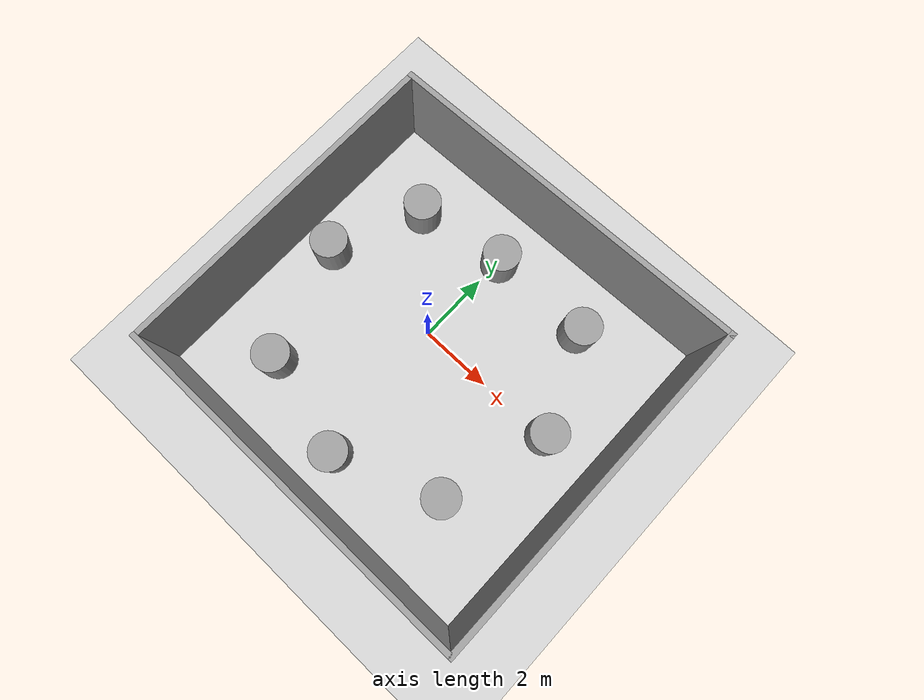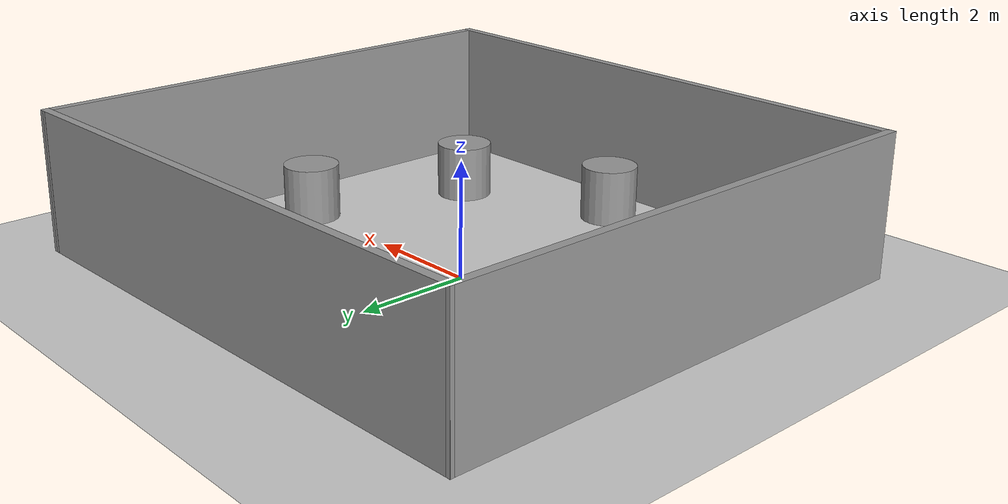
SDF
<sdf version="1.7">
 <world name="default">
  <light name="sun" type="directional">
   <pose>0 0 10 0 -0 0</pose>
   <diffuse>0.8 0.8 0.8 1</diffuse>
   <specular>0.2 0.2 0.2 1</specular>
   <attenuation>
    <range>1000</range>
    <constant>0.9</constant>
    <linear>0.01</linear>
    <quadratic>0.001</quadratic>
   </attenuation>
   <direction>-0.5 0.1 -0.9</direction>
   <spot><inner_angle>0</inner_angle><outer_angle>0</outer_angle><falloff>0</falloff></spot>
  </light>
  <model name="ground_plane">
   <static>1</static>
   <link name="link">
    <collision name="collision">
     <geometry><plane><normal>0 0 1</normal><size>100 100</size></plane></geometry>
     <surface>
      <friction><ode><mu>100</mu><mu2>50</mu2></ode></friction>
      <bounce><restitution_coefficient>1</restitution_coefficient><threshold>0</threshold></bounce>
      <contact><ode><max_vel>10000</max_vel><min_depth>0.001</min_depth></ode></contact>
     </surface>
    </collision>
    <visual name="visual">
     <cast_shadows>0</cast_shadows>
     <geometry><plane><normal>0 0 1</normal><size>100 100</size></plane></geometry>
     <material>
      <script><uri>file://media/materials/scripts/gazebo.material</uri><name>Gazebo/Grey</name></script>
     </material>
    </visual>
   </link>
  </model>
  <model name="camera_model">
   <pose>0 0 0.5 0 -0 3.14</pose>
   <static>1</static>
   <link name="camera_link">
    <sensor name="camera1" type="depth">
     <update_rate>60</update_rate>
     <visualize>0</visualize>
     <camera>
      <horizontal_fov>1.92</horizontal_fov>
      <image><width>640</width><height>480</height><format>B8G8R8</format></image>
      <depth_camera><output>depths</output></depth_camera>
      <clip><near>0.02</near><far>300</far></clip>
      <noise><type>gaussian</type><mean>0</mean><stddev>0.007</stddev></noise>
     </camera>
     <plugin name="camera_controller" filename="libgazebo_ros_camera.so">
      <ros>
       <namespace>demo_cam</namespace>
       <remapping>mycamera/image_raw:=mycamera/image_demo</remapping>
       <remapping>mycamera/depth/image_raw:=mycamera/depth_demo</remapping>
       <remapping>mycamera/camera_info:=mycamera/raw_cam_info_demo</remapping>
       <remapping>mycamera/depth/camera_info:=mycamera/depth_cam_info_demo</remapping>
       <remapping>mycamera/points:=mycamera/points_demo</remapping>
      </ros>
      <camera_name>mycamera</camera_name>
      <min_depth>0.1</min_depth>
      <max_depth>500</max_depth>
     </plugin>
    </sensor>
   </link>
  </model>
  <gravity>0 0 -9.8</gravity>
  <magnetic_field>6e-06 2.3e-05 -4.2e-05</magnetic_field>
  <atmosphere type="adiabatic"/>
  <physics type="ode">
   <max_step_size>0.001</max_step_size>
   <real_time_factor>1</real_time_factor>
   <real_time_update_rate>1000</real_time_update_rate>
  </physics>
  <scene><ambient>0.4 0.4 0.4 1</ambient><background>0.7 0.7 0.7 1</background><shadows>1</shadows></scene>
  <audio><device>default</device></audio>
  <spherical_coordinates>
   <surface_model>EARTH_WGS84</surface_model>
   <latitude_deg>0</latitude_deg>
   <longitude_deg>0</longitude_deg>
   <elevation>0</elevation>
   <heading_deg>0</heading_deg>
  </spherical_coordinates>
  <model name="newest_1">
   <pose>0.50999 -0.353382 0 0 -0 0</pose>
   <link name="Wall_13">
    <collision name="Wall_13_Collision">
     <geometry><box><size>9.25 0.15 2.5</size></box></geometry>
     <pose>0 0 1.25 0 -0 0</pose>
    </collision>
    <visual name="Wall_13_Visual">
     <pose>0 0 1.25 0 -0 0</pose>
     <geometry><box><size>9.25 0.15 2.5</size></box></geometry>
     <material>
      <script><uri>file://media/materials/scripts/gazebo.material</uri><name>Gazebo/Grey</name></script>
      <ambient>1 1 1 1</ambient>
     </material>
     <meta><layer>0</layer></meta>
    </visual>
    <pose>-4.925 -0.125939 0 0 -0 -1.5708</pose>
   </link>
   <link name="Wall_14">
    <collision name="Wall_14_Collision">
     <geometry><box><size>10 0.15 2.5</size></box></geometry>
     <pose>0 0 1.25 0 -0 0</pose>
    </collision>
    <visual name="Wall_14_Visual">
     <pose>0 0 1.25 0 -0 0</pose>
     <geometry><box><size>10 0.15 2.5</size></box></geometry>
     <material>
      <script><uri>file://media/materials/scripts/gazebo.material</uri><name>Gazebo/Grey</name></script>
      <ambient>1 1 1 1</ambient>
     </material>
     <meta><layer>0</layer></meta>
    </visual>
    <pose>0 -4.67594 0 0 -0 0</pose>
   </link>
   <link name="Wall_15">
    <collision name="Wall_15_Collision">
     <geometry><box><size>9.5 0.15 2.5</size></box></geometry>
     <pose>0 0 1.25 0 -0 0</pose>
    </collision>
    <visual name="Wall_15_Visual">
     <pose>0 0 1.25 0 -0 0</pose>
     <geometry><box><size>9.5 0.15 2.5</size></box></geometry>
     <material>
      <script><uri>file://media/materials/scripts/gazebo.material</uri><name>Gazebo/Grey</name></script>
      <ambient>1 1 1 1</ambient>
     </material>
     <meta><layer>0</layer></meta>
    </visual>
    <pose>4.925 -0.000939 0 0 -0 1.5708</pose>
   </link>
   <link name="Wall_16">
    <collision name="Wall_16_Collision">
     <geometry><box><size>10.0032 0.15 2.5</size></box></geometry>
     <pose>0 0 1.25 0 -0 0</pose>
    </collision>
    <visual name="Wall_16_Visual">
     <pose>0 0 1.25 0 -0 0</pose>
     <geometry><box><size>10.0032 0.15 2.5</size></box></geometry>
     <material>
      <script><uri>file://media/materials/scripts/gazebo.material</uri><name>Gazebo/Grey</name></script>
      <ambient>1 1 1 1</ambient>
     </material>
     <meta><layer>0</layer></meta>
    </visual>
    <pose>0 4.54906 0 0 -0 -3.11622</pose>
   </link>
   <static>1</static>
  </model>
  <model name="unit_cylinder">
   <pose>0.073072 2.69162 0.499993 -3e-06 -4e-06 -0</pose>
   <link name="link">
    <inertial>
     <mass>1</mass>
     <inertia><ixx>0.145833</ixx><ixy>0</ixy><ixz>0</ixz><iyy>0.145833</iyy><iyz>0</iyz><izz>0.125</izz></inertia>
    </inertial>
    <collision name="collision">
     <geometry><cylinder><radius>0.5</radius><length>1</length></cylinder></geometry>
    </collision>
    <visual name="visual">
     <geometry><cylinder><radius>0.5</radius><length>1</length></cylinder></geometry>
     <material>
      <script><name>Gazebo/Grey</name><uri>file://media/materials/scripts/gazebo.material</uri></script>
     </material>
    </visual>
   </link>
  </model>
  <model name="unit_cylinder_0">
   <pose>4.01744 0.07041 0.499993 -3e-06 -4e-06 -0</pose>
   <link name="link">
    <inertial>
     <mass>1</mass>
     <inertia><ixx>0.145833</ixx><ixy>0</ixy><ixz>0</ixz><iyy>0.145833</iyy><iyz>0</iyz><izz>0.125</izz></inertia>
    </inertial>
    <collision name="collision">
     <geometry><cylinder><radius>0.5</radius><length>1</length></cylinder></geometry>
    </collision>
    <visual name="visual">
     <geometry><cylinder><radius>0.5</radius><length>1</length></cylinder></geometry>
     <material>
      <script><name>Gazebo/Grey</name><uri>file://media/materials/scripts/gazebo.material</uri></script>
     </material>
    </visual>
   </link>
  </model>
  <model name="unit_cylinder_1">
   <pose>0.400713 -3.93698 0.499993 -3e-06 -4e-06 -0</pose>
   <link name="link">
    <inertial>
     <mass>1</mass>
     <inertia><ixx>0.145833</ixx><ixy>0</ixy><ixz>0</ixz><iyy>0.145833</iyy><iyz>0</iyz><izz>0.125</izz></inertia>
    </inertial>
    <collision name="collision">
     <geometry><cylinder><radius>0.5</radius><length>1</length></cylinder></geometry>
    </collision>
    <visual name="visual">
     <geometry><cylinder><radius>0.5</radius><length>1</length></cylinder></geometry>
     <material>
      <script><name>Gazebo/Grey</name><uri>file://media/materials/scripts/gazebo.material</uri></script>
     </material>
    </visual>
   </link>
  </model>
  <model name="unit_cylinder_2">
   <pose>-3.43022 -0.118628 0.499993 -3e-06 -4e-06 -0</pose>
   <link name="link">
    <inertial>
     <mass>1</mass>
     <inertia><ixx>0.145833</ixx><ixy>0</ixy><ixz>0</ixz><iyy>0.145833</iyy><iyz>0</iyz><izz>0.125</izz></inertia>
    </inertial>
    <collision name="collision">
     <geometry><cylinder><radius>0.5</radius><length>1</length></cylinder></geometry>
    </collision>
    <visual name="visual">
     <geometry><cylinder><radius>0.5</radius><length>1</length></cylinder></geometry>
     <material>
      <script><name>Gazebo/Grey</name><uri>file://media/materials/scripts/gazebo.material</uri></script>
     </material>
    </visual>
   </link>
  </model>
  <model name="unit_cylinder_3">
   <pose>2.85807 2.65378 0.499993 -3e-06 -4e-06 -0</pose>
   <link name="link">
    <inertial>
     <mass>1</mass>
     <inertia><ixx>0.145833</ixx><ixy>0</ixy><ixz>0</ixz><iyy>0.145833</iyy><iyz>0</iyz><izz>0.125</izz></inertia>
    </inertial>
    <collision name="collision">
     <geometry><cylinder><radius>0.5</radius><length>1</length></cylinder></geometry>
    </collision>
    <visual name="visual">
     <geometry><cylinder><radius>0.5</radius><length>1</length></cylinder></geometry>
     <material>
      <script><name>Gazebo/Grey</name><uri>file://media/materials/scripts/gazebo.material</uri></script>
     </material>
    </visual>
   </link>
  </model>
  <model name="unit_cylinder_4">
   <pose>3.14791 -2.86581 0.499993 -3e-06 -4e-06 -0</pose>
   <link name="link">
    <inertial>
     <mass>1</mass>
     <inertia><ixx>0.145833</ixx><ixy>0</ixy><ixz>0</ixz><iyy>0.145833</iyy><iyz>0</iyz><izz>0.125</izz></inertia>
    </inertial>
    <collision name="collision">
     <geometry><cylinder><radius>0.5</radius><length>1</length></cylinder></geometry>
    </collision>
    <visual name="visual">
     <geometry><cylinder><radius>0.5</radius><length>1</length></cylinder></geometry>
     <material>
      <script><name>Gazebo/Grey</name><uri>file://media/materials/scripts/gazebo.material</uri></script>
     </material>
    </visual>
   </link>
  </model>
  <model name="unit_cylinder_5">
   <pose>-2.38428 2.30093 0.499993 -3e-06 -4e-06 -0</pose>
   <link name="link">
    <inertial>
     <mass>1</mass>
     <inertia><ixx>0.145833</ixx><ixy>0</ixy><ixz>0</ixz><iyy>0.145833</iyy><iyz>0</iyz><izz>0.125</izz></inertia>
    </inertial>
    <collision name="collision">
     <geometry><cylinder><radius>0.5</radius><length>1</length></cylinder></geometry>
    </collision>
    <visual name="visual">
     <geometry><cylinder><radius>0.5</radius><length>1</length></cylinder></geometry>
     <material>
      <script><name>Gazebo/Grey</name><uri>file://media/materials/scripts/gazebo.material</uri></script>
     </material>
    </visual>
   </link>
  </model>
  <model name="unit_cylinder_6">
   <pose>-2.35908 -3.21866 0.499993 -3e-06 -4e-06 -0</pose>
   <link name="link">
    <inertial>
     <mass>1</mass>
     <inertia><ixx>0.145833</ixx><ixy>0</ixy><ixz>0</ixz><iyy>0.145833</iyy><iyz>0</iyz><izz>0.125</izz></inertia>
    </inertial>
    <collision name="collision">
     <geometry><cylinder><radius>0.5</radius><length>1</length></cylinder></geometry>
    </collision>
    <visual name="visual">
     <geometry><cylinder><radius>0.5</radius><length>1</length></cylinder></geometry>
     <material>
      <script><name>Gazebo/Grey</name><uri>file://media/materials/scripts/gazebo.material</uri></script>
     </material>
    </visual>
   </link>
  </model>
 </world>
</sdf>
